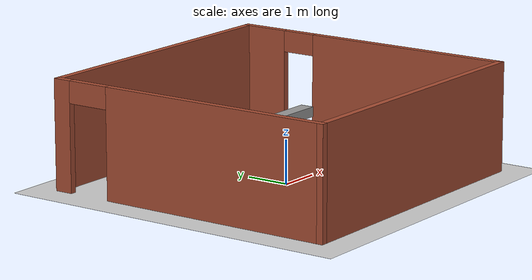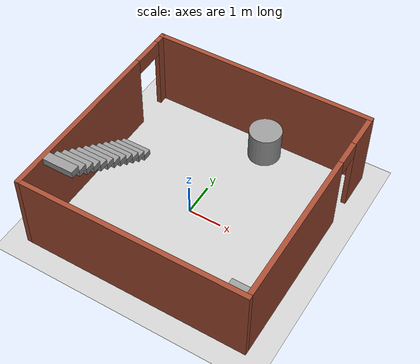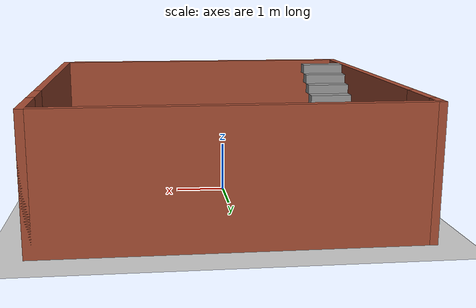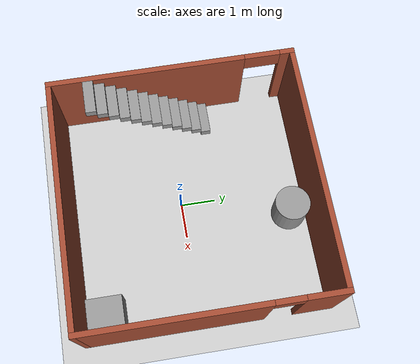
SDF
<sdf version="1.6">
 <world name="default">
  <light name="sun" type="directional">
   <pose>0 0 10 0 -0 0</pose>
   <diffuse>0.8 0.8 0.8 1</diffuse>
   <specular>0.2 0.2 0.2 1</specular>
   <attenuation>
    <range>1000</range>
    <constant>0.9</constant>
    <linear>0.01</linear>
    <quadratic>0.001</quadratic>
   </attenuation>
   <direction>-0.5 0.1 -0.9</direction>
  </light>
  <model name="ground_plane">
   <static>1</static>
   <link name="link">
    <collision name="collision">
     <geometry><plane><normal>0 0 1</normal><size>100 100</size></plane></geometry>
     <surface><friction><ode><mu>100</mu><mu2>50</mu2></ode></friction></surface>
    </collision>
    <visual name="visual">
     <cast_shadows>0</cast_shadows>
     <geometry><plane><normal>0 0 1</normal><size>100 100</size></plane></geometry>
     <material>
      <script><uri>file://media/materials/scripts/gazebo.material</uri><name>Gazebo/Grey</name></script>
     </material>
    </visual>
   </link>
  </model>
  <gravity>0 0 -9.8</gravity>
  <magnetic_field>6e-06 2.3e-05 -4.2e-05</magnetic_field>
  <atmosphere type="adiabatic"/>
  <physics name="default_physics" default="0" type="ode">
   <max_step_size>0.001</max_step_size>
   <real_time_factor>1</real_time_factor>
   <real_time_update_rate>1000</real_time_update_rate>
  </physics>
  <scene><ambient>0.4 0.4 0.4 1</ambient><background>0.7 0.7 0.7 1</background><shadows>1</shadows></scene>
  <spherical_coordinates>
   <surface_model>EARTH_WGS84</surface_model>
   <latitude_deg>0</latitude_deg>
   <longitude_deg>0</longitude_deg>
   <elevation>0</elevation>
   <heading_deg>0</heading_deg>
  </spherical_coordinates>
  <model name="Stairs_wor">
   <pose>0.191947 0.243534 0 0 -0 0</pose>
   <link name="Stairs_1">
    <visual name="Stairs_1_Visual_0">
     <pose>-2.8959 0.862168 0.104167 0 -0 0</pose>
     <geometry><box><size>1 0.291667 0.208333</size></box></geometry>
     <material>
      <script><uri>file://media/materials/scripts/gazebo.material</uri><name>Gazebo/Grey</name></script>
      <ambient>0.533333 0.541176 0.521569 1</ambient>
     </material>
     <meta><layer>0</layer></meta>
    </visual>
    <collision name="Stairs_1_Collision_0">
     <geometry><box><size>1 0.291667 0.208333</size></box></geometry>
     <pose>-2.8959 0.862168 0.104167 0 -0 0</pose>
    </collision>
    <visual name="Stairs_1_Visual_1">
     <pose>-2.8959 0.570501 0.3125 0 -0 0</pose>
     <geometry><box><size>1 0.291667 0.208333</size></box></geometry>
     <material>
      <script><uri>file://media/materials/scripts/gazebo.material</uri><name>Gazebo/Grey</name></script>
      <ambient>0.533333 0.541176 0.521569 1</ambient>
     </material>
     <meta><layer>0</layer></meta>
    </visual>
    <collision name="Stairs_1_Collision_1">
     <geometry><box><size>1 0.291667 0.208333</size></box></geometry>
     <pose>-2.8959 0.570501 0.3125 0 -0 0</pose>
    </collision>
    <visual name="Stairs_1_Visual_2">
     <pose>-2.8959 0.278834 0.520833 0 -0 0</pose>
     <geometry><box><size>1 0.291667 0.208333</size></box></geometry>
     <material>
      <script><uri>file://media/materials/scripts/gazebo.material</uri><name>Gazebo/Grey</name></script>
      <ambient>0.533333 0.541176 0.521569 1</ambient>
     </material>
     <meta><layer>0</layer></meta>
    </visual>
    <collision name="Stairs_1_Collision_2">
     <geometry><box><size>1 0.291667 0.208333</size></box></geometry>
     <pose>-2.8959 0.278834 0.520833 0 -0 0</pose>
    </collision>
    <visual name="Stairs_1_Visual_3">
     <pose>-2.8959 -0.012833 0.729167 0 -0 0</pose>
     <geometry><box><size>1 0.291667 0.208333</size></box></geometry>
     <material>
      <script><uri>file://media/materials/scripts/gazebo.material</uri><name>Gazebo/Grey</name></script>
      <ambient>0.533333 0.541176 0.521569 1</ambient>
     </material>
     <meta><layer>0</layer></meta>
    </visual>
    <collision name="Stairs_1_Collision_3">
     <geometry><box><size>1 0.291667 0.208333</size></box></geometry>
     <pose>-2.8959 -0.012833 0.729167 0 -0 0</pose>
    </collision>
    <visual name="Stairs_1_Visual_4">
     <pose>-2.8959 -0.304499 0.9375 0 -0 0</pose>
     <geometry><box><size>1 0.291667 0.208333</size></box></geometry>
     <material>
      <script><uri>file://media/materials/scripts/gazebo.material</uri><name>Gazebo/Grey</name></script>
      <ambient>0.533333 0.541176 0.521569 1</ambient>
     </material>
     <meta><layer>0</layer></meta>
    </visual>
    <collision name="Stairs_1_Collision_4">
     <geometry><box><size>1 0.291667 0.208333</size></box></geometry>
     <pose>-2.8959 -0.304499 0.9375 0 -0 0</pose>
    </collision>
    <visual name="Stairs_1_Visual_5">
     <pose>-2.8959 -0.596166 1.14583 0 -0 0</pose>
     <geometry><box><size>1 0.291667 0.208333</size></box></geometry>
     <material>
      <script><uri>file://media/materials/scripts/gazebo.material</uri><name>Gazebo/Grey</name></script>
      <ambient>0.533333 0.541176 0.521569 1</ambient>
     </material>
     <meta><layer>0</layer></meta>
    </visual>
    <collision name="Stairs_1_Collision_5">
     <geometry><box><size>1 0.291667 0.208333</size></box></geometry>
     <pose>-2.8959 -0.596166 1.14583 0 -0 0</pose>
    </collision>
    <visual name="Stairs_1_Visual_6">
     <pose>-2.8959 -0.887833 1.35417 0 -0 0</pose>
     <geometry><box><size>1 0.291667 0.208333</size></box></geometry>
     <material>
      <script><uri>file://media/materials/scripts/gazebo.material</uri><name>Gazebo/Grey</name></script>
      <ambient>0.533333 0.541176 0.521569 1</ambient>
     </material>
     <meta><layer>0</layer></meta>
    </visual>
    <collision name="Stairs_1_Collision_6">
     <geometry><box><size>1 0.291667 0.208333</size></box></geometry>
     <pose>-2.8959 -0.887833 1.35417 0 -0 0</pose>
    </collision>
    <visual name="Stairs_1_Visual_7">
     <pose>-2.8959 -1.1795 1.5625 0 -0 0</pose>
     <geometry><box><size>1 0.291667 0.208333</size></box></geometry>
     <material>
      <script><uri>file://media/materials/scripts/gazebo.material</uri><name>Gazebo/Grey</name></script>
      <ambient>0.533333 0.541176 0.521569 1</ambient>
     </material>
     <meta><layer>0</layer></meta>
    </visual>
    <collision name="Stairs_1_Collision_7">
     <geometry><box><size>1 0.291667 0.208333</size></box></geometry>
     <pose>-2.8959 -1.1795 1.5625 0 -0 0</pose>
    </collision>
    <visual name="Stairs_1_Visual_8">
     <pose>-2.8959 -1.47117 1.77083 0 -0 0</pose>
     <geometry><box><size>1 0.291667 0.208333</size></box></geometry>
     <material>
      <script><uri>file://media/materials/scripts/gazebo.material</uri><name>Gazebo/Grey</name></script>
      <ambient>0.533333 0.541176 0.521569 1</ambient>
     </material>
     <meta><layer>0</layer></meta>
    </visual>
    <collision name="Stairs_1_Collision_8">
     <geometry><box><size>1 0.291667 0.208333</size></box></geometry>
     <pose>-2.8959 -1.47117 1.77083 0 -0 0</pose>
    </collision>
    <visual name="Stairs_1_Visual_9">
     <pose>-2.8959 -1.76283 1.97917 0 -0 0</pose>
     <geometry><box><size>1 0.291667 0.208333</size></box></geometry>
     <material>
      <script><uri>file://media/materials/scripts/gazebo.material</uri><name>Gazebo/Grey</name></script>
      <ambient>0.533333 0.541176 0.521569 1</ambient>
     </material>
     <meta><layer>0</layer></meta>
    </visual>
    <collision name="Stairs_1_Collision_9">
     <geometry><box><size>1 0.291667 0.208333</size></box></geometry>
     <pose>-2.8959 -1.76283 1.97917 0 -0 0</pose>
    </collision>
    <visual name="Stairs_1_Visual_10">
     <pose>-2.8959 -2.0545 2.1875 0 -0 0</pose>
     <geometry><box><size>1 0.291667 0.208333</size></box></geometry>
     <material>
      <script><uri>file://media/materials/scripts/gazebo.material</uri><name>Gazebo/Grey</name></script>
      <ambient>0.533333 0.541176 0.521569 1</ambient>
     </material>
     <meta><layer>0</layer></meta>
    </visual>
    <collision name="Stairs_1_Collision_10">
     <geometry><box><size>1 0.291667 0.208333</size></box></geometry>
     <pose>-2.8959 -2.0545 2.1875 0 -0 0</pose>
    </collision>
    <visual name="Stairs_1_Visual_11">
     <pose>-2.8959 -2.34617 2.39583 0 -0 0</pose>
     <geometry><box><size>1 0.291667 0.208333</size></box></geometry>
     <material>
      <script><uri>file://media/materials/scripts/gazebo.material</uri><name>Gazebo/Grey</name></script>
      <ambient>0.533333 0.541176 0.521569 1</ambient>
     </material>
     <meta><layer>0</layer></meta>
    </visual>
    <collision name="Stairs_1_Collision_11">
     <geometry><box><size>1 0.291667 0.208333</size></box></geometry>
     <pose>-2.8959 -2.34617 2.39583 0 -0 0</pose>
    </collision>
   </link>
   <link name="Wall_0">
    <collision name="Wall_0_Collision">
     <geometry><box><size>7 0.15 2.5</size></box></geometry>
     <pose>0 0 1.25 0 -0 0</pose>
    </collision>
    <visual name="Wall_0_Visual">
     <pose>0 0 1.25 0 -0 0</pose>
     <geometry><box><size>7 0.15 2.5</size></box></geometry>
     <material>
      <script><uri>file://media/materials/scripts/gazebo.material</uri><name>Gazebo/Bricks</name></script>
      <ambient>1 1 1 1</ambient>
     </material>
     <meta><layer>0</layer></meta>
    </visual>
    <pose>-0 3.425 0 0 -0 0</pose>
   </link>
   <link name="Wall_3">
    <pose>3.425 -0 0 0 -0 -1.5708</pose>
    <visual name="Wall_3_Visual_0">
     <pose>-2.9193 0 1.25 0 -0 0</pose>
     <geometry><box><size>1.1614 0.15 2.5</size></box></geometry>
     <material>
      <script><uri>file://media/materials/scripts/gazebo.material</uri><name>Gazebo/Bricks</name></script>
      <ambient>1 1 1 1</ambient>
     </material>
     <meta><layer>0</layer></meta>
    </visual>
    <collision name="Wall_3_Collision_0">
     <geometry><box><size>1.1614 0.15 2.5</size></box></geometry>
     <pose>-2.9193 0 1.25 0 -0 0</pose>
    </collision>
    <visual name="Wall_3_Visual_1">
     <pose>0.9807 0 1.25 0 -0 0</pose>
     <geometry><box><size>5.0386 0.15 2.5</size></box></geometry>
     <material>
      <script><uri>file://media/materials/scripts/gazebo.material</uri><name>Gazebo/Bricks</name></script>
      <ambient>1 1 1 1</ambient>
     </material>
     <meta><layer>0</layer></meta>
    </visual>
    <collision name="Wall_3_Collision_1">
     <geometry><box><size>5.0386 0.15 2.5</size></box></geometry>
     <pose>0.9807 0 1.25 0 -0 0</pose>
    </collision>
    <visual name="Wall_3_Visual_2">
     <pose>-1.9386 0 2.25 0 -0 0</pose>
     <geometry><box><size>0.8 0.15 0.5</size></box></geometry>
     <material>
      <script><uri>file://media/materials/scripts/gazebo.material</uri><name>Gazebo/Bricks</name></script>
      <ambient>1 1 1 1</ambient>
     </material>
     <meta><layer>0</layer></meta>
    </visual>
    <collision name="Wall_3_Collision_2">
     <geometry><box><size>0.8 0.15 0.5</size></box></geometry>
     <pose>-1.9386 0 2.25 0 -0 0</pose>
    </collision>
   </link>
   <link name="Wall_4">
    <collision name="Wall_4_Collision">
     <geometry><box><size>7 0.15 2.5</size></box></geometry>
     <pose>0 0 1.25 0 -0 0</pose>
    </collision>
    <visual name="Wall_4_Visual">
     <pose>0 0 1.25 0 -0 0</pose>
     <geometry><box><size>7 0.15 2.5</size></box></geometry>
     <material>
      <script><uri>file://media/materials/scripts/gazebo.material</uri><name>Gazebo/Bricks</name></script>
      <ambient>1 1 1 1</ambient>
     </material>
     <meta><layer>0</layer></meta>
    </visual>
    <pose>-0 -3.425 0 0 -0 3.14159</pose>
   </link>
   <link name="Wall_5">
    <pose>-3.425 -0 0 0 -0 1.5708</pose>
    <visual name="Wall_5_Visual_0">
     <pose>-0.709685 0 1.25 0 -0 0</pose>
     <geometry><box><size>5.58063 0.15 2.5</size></box></geometry>
     <material>
      <script><uri>file://media/materials/scripts/gazebo.material</uri><name>Gazebo/Bricks</name></script>
      <ambient>1 1 1 1</ambient>
     </material>
     <meta><layer>0</layer></meta>
    </visual>
    <collision name="Wall_5_Collision_0">
     <geometry><box><size>5.58063 0.15 2.5</size></box></geometry>
     <pose>-0.709685 0 1.25 0 -0 0</pose>
    </collision>
    <visual name="Wall_5_Visual_1">
     <pose>3.29032 0 1.25 0 -0 0</pose>
     <geometry><box><size>0.41937 0.15 2.5</size></box></geometry>
     <material>
      <script><uri>file://media/materials/scripts/gazebo.material</uri><name>Gazebo/Bricks</name></script>
      <ambient>1 1 1 1</ambient>
     </material>
     <meta><layer>0</layer></meta>
    </visual>
    <collision name="Wall_5_Collision_1">
     <geometry><box><size>0.41937 0.15 2.5</size></box></geometry>
     <pose>3.29032 0 1.25 0 -0 0</pose>
    </collision>
    <visual name="Wall_5_Visual_2">
     <pose>2.58063 0 2.25 0 -0 0</pose>
     <geometry><box><size>1 0.15 0.5</size></box></geometry>
     <material>
      <script><uri>file://media/materials/scripts/gazebo.material</uri><name>Gazebo/Bricks</name></script>
      <ambient>1 1 1 1</ambient>
     </material>
     <meta><layer>0</layer></meta>
    </visual>
    <collision name="Wall_5_Collision_2">
     <geometry><box><size>1 0.15 0.5</size></box></geometry>
     <pose>2.58063 0 2.25 0 -0 0</pose>
    </collision>
   </link>
   <static>1</static>
  </model>
  <model name="unit_box">
   <pose>3.03796 -2.50901 0.499995 -1e-05 0 0</pose>
   <link name="link">
    <inertial>
     <mass>1</mass>
     <inertia>
      <ixx>0.166667</ixx>
      <ixy>0</ixy>
      <ixz>0</ixz>
      <iyy>0.166667</iyy>
      <iyz>0</iyz>
      <izz>0.166667</izz>
     </inertia>
    </inertial>
    <collision name="collision"><geometry><box><size>1 1 1</size></box></geometry></collision>
    <visual name="visual">
     <geometry><box><size>1 1 1</size></box></geometry>
     <material>
      <script><name>Gazebo/Grey</name><uri>file://media/materials/scripts/gazebo.material</uri></script>
     </material>
    </visual>
   </link>
  </model>
  <model name="unit_cylinder">
   <pose>0.73354 3.09352 0.499998 3e-06 4e-06 -0</pose>
   <link name="link">
    <inertial>
     <mass>1</mass>
     <inertia><ixx>0.145833</ixx><ixy>0</ixy><ixz>0</ixz><iyy>0.145833</iyy><iyz>0</iyz><izz>0.125</izz></inertia>
    </inertial>
    <collision name="collision">
     <geometry><cylinder><radius>0.5</radius><length>1</length></cylinder></geometry>
    </collision>
    <visual name="visual">
     <geometry><cylinder><radius>0.5</radius><length>1</length></cylinder></geometry>
     <material>
      <script><name>Gazebo/Grey</name><uri>file://media/materials/scripts/gazebo.material</uri></script>
     </material>
    </visual>
   </link>
  </model>
 </world>
</sdf>
